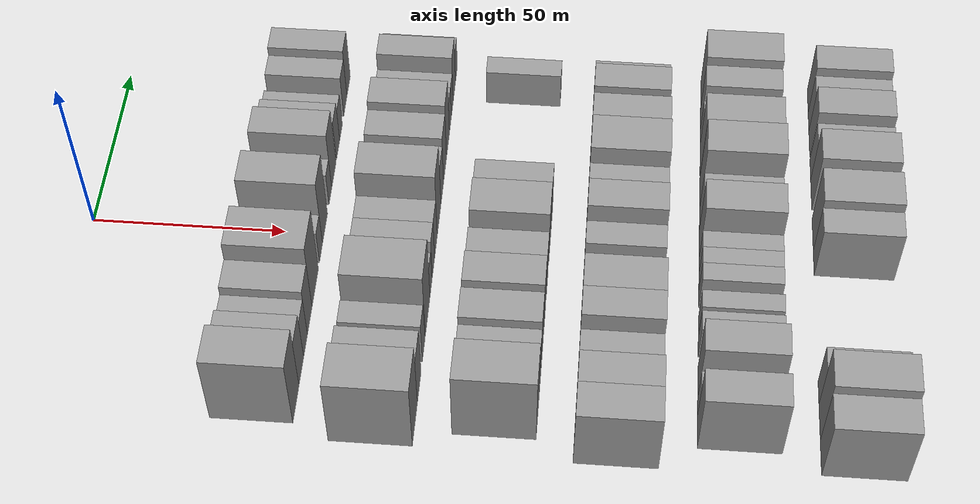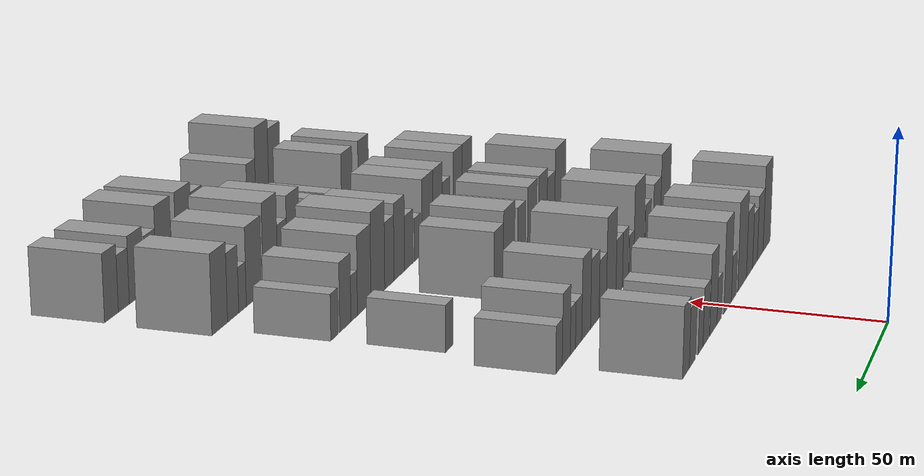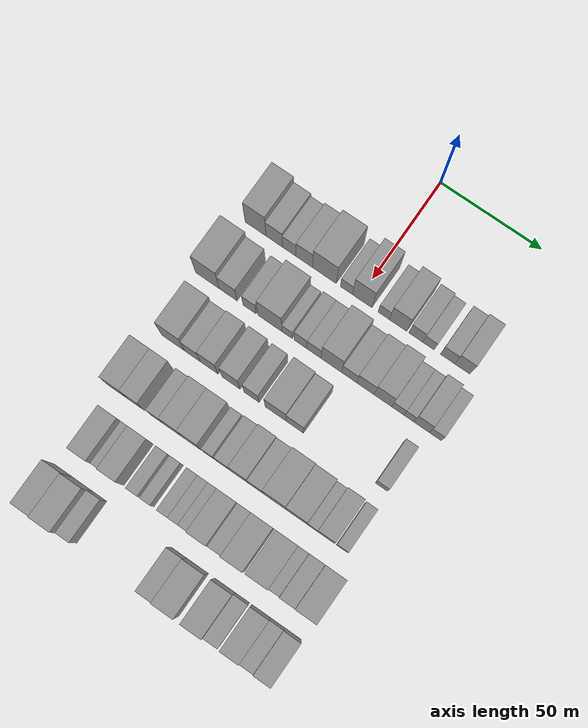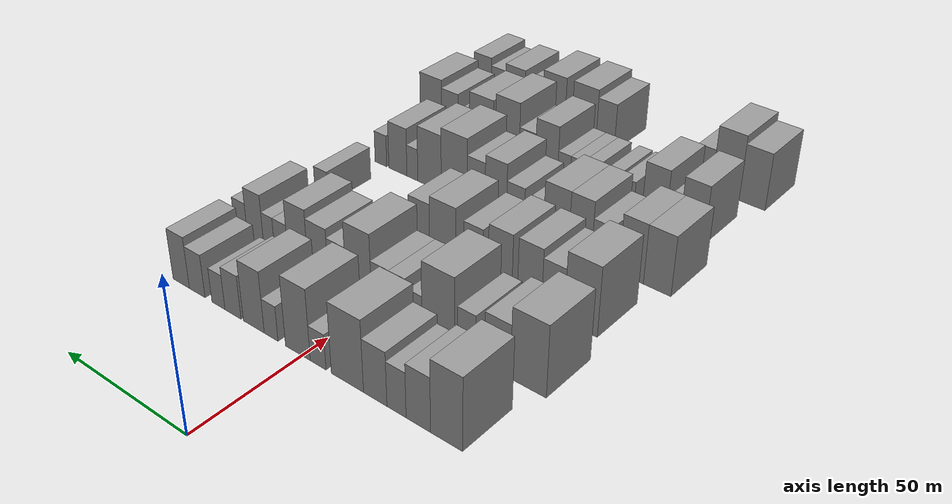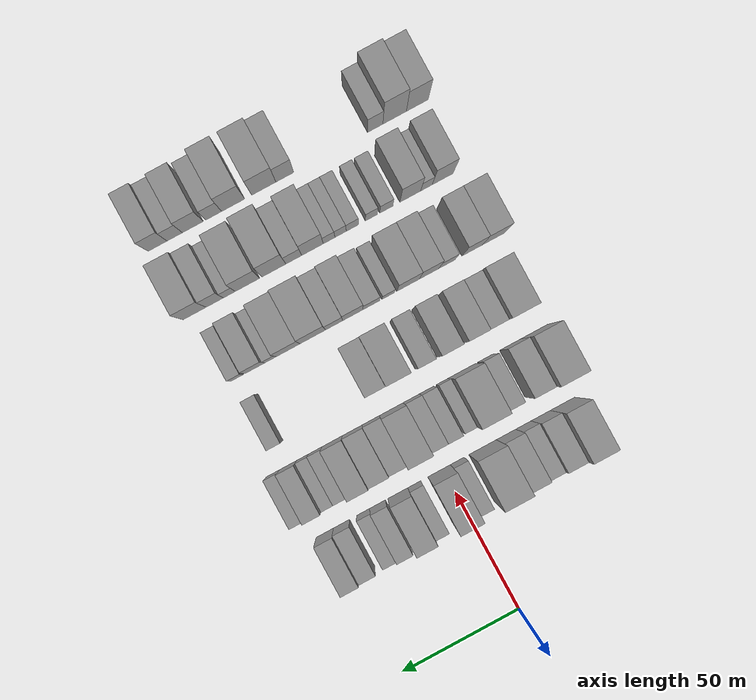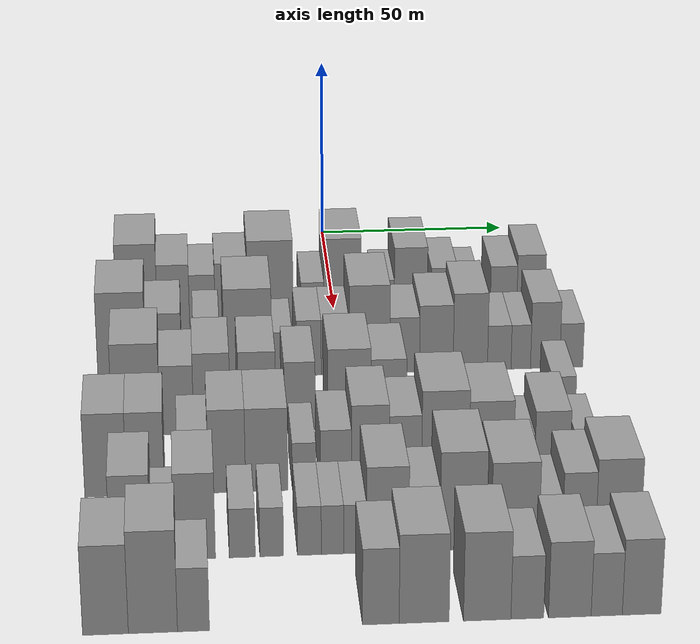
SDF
<sdf version="1.6">
 <world name="default">
  <model name="building_49">
   <static>1</static>
   <pose>50.0000 -51.3033 0 0.000000 0.000000 0.000000</pose>
   <link name="link">
    <pose>0 0 12.00 0 0 0</pose>
    <collision name="collision"><geometry><box><size>20.0000 10.4907 24.0000</size></box></geometry></collision>
    <visual name="visual">
     <cast_shadows>0</cast_shadows>
     <geometry><box><size>20.0000 10.4907 24.0000</size></box></geometry>
     <material>
      <script>
       <uri>model://grey_wall/materials/scripts</uri>
       <uri>model://grey_wall/materials/textures</uri>
       <name>vrc/grey_wall</name>
      </script>
     </material>
    </visual>
   </link>
  </model>
  <model name="building_50">
   <static>1</static>
   <pose>50.0000 -41.9349 0 0.000000 0.000000 0.000000</pose>
   <link name="link">
    <pose>0 0 9.00 0 0 0</pose>
    <collision name="collision"><geometry><box><size>20.0000 8.2460 18.0000</size></box></geometry></collision>
    <visual name="visual">
     <cast_shadows>0</cast_shadows>
     <geometry><box><size>20.0000 8.2460 18.0000</size></box></geometry>
     <material>
      <script>
       <uri>model://grey_wall/materials/scripts</uri>
       <uri>model://grey_wall/materials/textures</uri>
       <name>vrc/grey_wall</name>
      </script>
     </material>
    </visual>
   </link>
  </model>
  <model name="building_51">
   <static>1</static>
   <pose>50.0000 -34.5024 0 0.000000 0.000000 0.000000</pose>
   <link name="link">
    <pose>0 0 7.50 0 0 0</pose>
    <collision name="collision"><geometry><box><size>20.0000 6.6191 15.0000</size></box></geometry></collision>
    <visual name="visual">
     <cast_shadows>0</cast_shadows>
     <geometry><box><size>20.0000 6.6191 15.0000</size></box></geometry>
     <material>
      <script>
       <uri>model://grey_wall/materials/scripts</uri>
       <uri>model://grey_wall/materials/textures</uri>
       <name>vrc/grey_wall</name>
      </script>
     </material>
    </visual>
   </link>
  </model>
  <model name="building_52">
   <static>1</static>
   <pose>50.0000 -27.0388 0 0.000000 0.000000 0.000000</pose>
   <link name="link">
    <pose>0 0 9.00 0 0 0</pose>
    <collision name="collision"><geometry><box><size>20.0000 8.3081 18.0000</size></box></geometry></collision>
    <visual name="visual">
     <cast_shadows>0</cast_shadows>
     <geometry><box><size>20.0000 8.3081 18.0000</size></box></geometry>
     <material>
      <script>
       <uri>model://grey_wall/materials/scripts</uri>
       <uri>model://grey_wall/materials/textures</uri>
       <name>vrc/grey_wall</name>
      </script>
     </material>
    </visual>
   </link>
  </model>
  <model name="building_53">
   <static>1</static>
   <pose>50.0000 -16.9919 0 0.000000 0.000000 0.000000</pose>
   <link name="link">
    <pose>0 0 12.00 0 0 0</pose>
    <collision name="collision"><geometry><box><size>20.0000 11.7858 24.0000</size></box></geometry></collision>
    <visual name="visual">
     <cast_shadows>0</cast_shadows>
     <geometry><box><size>20.0000 11.7858 24.0000</size></box></geometry>
     <material>
      <script>
       <uri>model://grey_wall/materials/scripts</uri>
       <uri>model://grey_wall/materials/textures</uri>
       <name>vrc/grey_wall</name>
      </script>
     </material>
    </visual>
   </link>
  </model>
  <model name="building_54">
   <static>1</static>
   <pose>50.0000 -6.1153 0 0.000000 0.000000 0.000000</pose>
   <link name="link">
    <pose>0 0 6.00 0 0 0</pose>
    <collision name="collision"><geometry><box><size>20.0000 5.9674 12.0000</size></box></geometry></collision>
    <visual name="visual">
     <cast_shadows>0</cast_shadows>
     <geometry><box><size>20.0000 5.9674 12.0000</size></box></geometry>
     <material>
      <script>
       <uri>model://grey_wall/materials/scripts</uri>
       <uri>model://grey_wall/materials/textures</uri>
       <name>vrc/grey_wall</name>
      </script>
     </material>
    </visual>
   </link>
  </model>
  <model name="building_55">
   <static>1</static>
   <pose>50.0000 1.6876 0 0.000000 0.000000 0.000000</pose>
   <link name="link">
    <pose>0 0 12.00 0 0 0</pose>
    <collision name="collision"><geometry><box><size>20.0000 9.6382 24.0000</size></box></geometry></collision>
    <visual name="visual">
     <cast_shadows>0</cast_shadows>
     <geometry><box><size>20.0000 9.6382 24.0000</size></box></geometry>
     <material>
      <script>
       <uri>model://grey_wall/materials/scripts</uri>
       <uri>model://grey_wall/materials/textures</uri>
       <name>vrc/grey_wall</name>
      </script>
     </material>
    </visual>
   </link>
  </model>
  <model name="building_56">
   <static>1</static>
   <pose>50.0000 12.2809 0 0.000000 0.000000 0.000000</pose>
   <link name="link">
    <pose>0 0 6.00 0 0 0</pose>
    <collision name="collision"><geometry><box><size>20.0000 5.5483 12.0000</size></box></geometry></collision>
    <visual name="visual">
     <cast_shadows>0</cast_shadows>
     <geometry><box><size>20.0000 5.5483 12.0000</size></box></geometry>
     <material>
      <script>
       <uri>model://grey_wall/materials/scripts</uri>
       <uri>model://grey_wall/materials/textures</uri>
       <name>vrc/grey_wall</name>
      </script>
     </material>
    </visual>
   </link>
  </model>
  <model name="building_57">
   <static>1</static>
   <pose>50.0000 19.3455 0 0.000000 0.000000 0.000000</pose>
   <link name="link">
    <pose>0 0 10.50 0 0 0</pose>
    <collision name="collision"><geometry><box><size>20.0000 8.5810 21.0000</size></box></geometry></collision>
    <visual name="visual">
     <cast_shadows>0</cast_shadows>
     <geometry><box><size>20.0000 8.5810 21.0000</size></box></geometry>
     <material>
      <script>
       <uri>model://grey_wall/materials/scripts</uri>
       <uri>model://grey_wall/materials/textures</uri>
       <name>vrc/grey_wall</name>
      </script>
     </material>
    </visual>
   </link>
  </model>
  <model name="building_58">
   <static>1</static>
   <pose>50.0000 28.0210 0 0.000000 0.000000 0.000000</pose>
   <link name="link">
    <pose>0 0 7.50 0 0 0</pose>
    <collision name="collision"><geometry><box><size>20.0000 6.7700 15.0000</size></box></geometry></collision>
    <visual name="visual">
     <cast_shadows>0</cast_shadows>
     <geometry><box><size>20.0000 6.7700 15.0000</size></box></geometry>
     <material>
      <script>
       <uri>model://grey_wall/materials/scripts</uri>
       <uri>model://grey_wall/materials/textures</uri>
       <name>vrc/grey_wall</name>
      </script>
     </material>
    </visual>
   </link>
  </model>
  <model name="building_59">
   <static>1</static>
   <pose>50.0000 34.2155 0 0.000000 0.000000 0.000000</pose>
   <link name="link">
    <pose>0 0 6.00 0 0 0</pose>
    <collision name="collision"><geometry><box><size>20.0000 5.6189 12.0000</size></box></geometry></collision>
    <visual name="visual">
     <cast_shadows>0</cast_shadows>
     <geometry><box><size>20.0000 5.6189 12.0000</size></box></geometry>
     <material>
      <script>
       <uri>model://grey_wall/materials/scripts</uri>
       <uri>model://grey_wall/materials/textures</uri>
       <name>vrc/grey_wall</name>
      </script>
     </material>
    </visual>
   </link>
  </model>
  <model name="building_60">
   <static>1</static>
   <pose>50.0000 43.4858 0 0.000000 0.000000 0.000000</pose>
   <link name="link">
    <pose>0 0 7.50 0 0 0</pose>
    <collision name="collision"><geometry><box><size>20.0000 6.9217 15.0000</size></box></geometry></collision>
    <visual name="visual">
     <cast_shadows>0</cast_shadows>
     <geometry><box><size>20.0000 6.9217 15.0000</size></box></geometry>
     <material>
      <script>
       <uri>model://grey_wall/materials/scripts</uri>
       <uri>model://grey_wall/materials/textures</uri>
       <name>vrc/grey_wall</name>
      </script>
     </material>
    </visual>
   </link>
  </model>
  <model name="building_61">
   <static>1</static>
   <pose>50.0000 50.6278 0 0.000000 0.000000 0.000000</pose>
   <link name="link">
    <pose>0 0 9.00 0 0 0</pose>
    <collision name="collision"><geometry><box><size>20.0000 7.3623 18.0000</size></box></geometry></collision>
    <visual name="visual">
     <cast_shadows>0</cast_shadows>
     <geometry><box><size>20.0000 7.3623 18.0000</size></box></geometry>
     <material>
      <script>
       <uri>model://grey_wall/materials/scripts</uri>
       <uri>model://grey_wall/materials/textures</uri>
       <name>vrc/grey_wall</name>
      </script>
     </material>
    </visual>
   </link>
  </model>
  <model name="building_156">
   <static>1</static>
   <pose>79.0000 -54.8177 0 0.000000 0.000000 0.000000</pose>
   <link name="link">
    <pose>0 0 12.00 0 0 0</pose>
    <collision name="collision"><geometry><box><size>20.0000 11.8199 24.0000</size></box></geometry></collision>
    <visual name="visual">
     <cast_shadows>0</cast_shadows>
     <geometry><box><size>20.0000 11.8199 24.0000</size></box></geometry>
     <material>
      <script>
       <uri>model://grey_wall/materials/scripts</uri>
       <uri>model://grey_wall/materials/textures</uri>
       <name>vrc/grey_wall</name>
      </script>
     </material>
    </visual>
   </link>
  </model>
  <model name="building_157">
   <static>1</static>
   <pose>79.0000 -44.4747 0 0.000000 0.000000 0.000000</pose>
   <link name="link">
    <pose>0 0 9.00 0 0 0</pose>
    <collision name="collision"><geometry><box><size>20.0000 8.8660 18.0000</size></box></geometry></collision>
    <visual name="visual">
     <cast_shadows>0</cast_shadows>
     <geometry><box><size>20.0000 8.8660 18.0000</size></box></geometry>
     <material>
      <script>
       <uri>model://grey_wall/materials/scripts</uri>
       <uri>model://grey_wall/materials/textures</uri>
       <name>vrc/grey_wall</name>
      </script>
     </material>
    </visual>
   </link>
  </model>
  <model name="building_158">
   <static>1</static>
   <pose>79.0000 -33.8122 0 0.000000 0.000000 0.000000</pose>
   <link name="link">
    <pose>0 0 7.50 0 0 0</pose>
    <collision name="collision"><geometry><box><size>20.0000 6.4590 15.0000</size></box></geometry></collision>
    <visual name="visual">
     <cast_shadows>0</cast_shadows>
     <geometry><box><size>20.0000 6.4590 15.0000</size></box></geometry>
     <material>
      <script>
       <uri>model://grey_wall/materials/scripts</uri>
       <uri>model://grey_wall/materials/textures</uri>
       <name>vrc/grey_wall</name>
      </script>
     </material>
    </visual>
   </link>
  </model>
  <model name="building_159">
   <static>1</static>
   <pose>79.0000 -23.6908 0 0.000000 0.000000 0.000000</pose>
   <link name="link">
    <pose>0 0 12.00 0 0 0</pose>
    <collision name="collision"><geometry><box><size>20.0000 11.7838 24.0000</size></box></geometry></collision>
    <visual name="visual">
     <cast_shadows>0</cast_shadows>
     <geometry><box><size>20.0000 11.7838 24.0000</size></box></geometry>
     <material>
      <script>
       <uri>model://grey_wall/materials/scripts</uri>
       <uri>model://grey_wall/materials/textures</uri>
       <name>vrc/grey_wall</name>
      </script>
     </material>
    </visual>
   </link>
  </model>
  <model name="building_160">
   <static>1</static>
   <pose>79.0000 -15.2521 0 0.000000 0.000000 0.000000</pose>
   <link name="link">
    <pose>0 0 6.00 0 0 0</pose>
    <collision name="collision"><geometry><box><size>20.0000 5.0935 12.0000</size></box></geometry></collision>
    <visual name="visual">
     <cast_shadows>0</cast_shadows>
     <geometry><box><size>20.0000 5.0935 12.0000</size></box></geometry>
     <material>
      <script>
       <uri>model://grey_wall/materials/scripts</uri>
       <uri>model://grey_wall/materials/textures</uri>
       <name>vrc/grey_wall</name>
      </script>
     </material>
    </visual>
   </link>
  </model>
  <model name="building_161">
   <static>1</static>
   <pose>79.0000 -8.6338 0 0.000000 0.000000 0.000000</pose>
   <link name="link">
    <pose>0 0 7.50 0 0 0</pose>
    <collision name="collision"><geometry><box><size>20.0000 6.1432 15.0000</size></box></geometry></collision>
    <visual name="visual">
     <cast_shadows>0</cast_shadows>
     <geometry><box><size>20.0000 6.1432 15.0000</size></box></geometry>
     <material>
      <script>
       <uri>model://grey_wall/materials/scripts</uri>
       <uri>model://grey_wall/materials/textures</uri>
       <name>vrc/grey_wall</name>
      </script>
     </material>
    </visual>
   </link>
  </model>
  <model name="building_162">
   <static>1</static>
   <pose>79.0000 -2.0818 0 0.000000 0.000000 0.000000</pose>
   <link name="link">
    <pose>0 0 7.50 0 0 0</pose>
    <collision name="collision"><geometry><box><size>20.0000 6.9608 15.0000</size></box></geometry></collision>
    <visual name="visual">
     <cast_shadows>0</cast_shadows>
     <geometry><box><size>20.0000 6.9608 15.0000</size></box></geometry>
     <material>
      <script>
       <uri>model://grey_wall/materials/scripts</uri>
       <uri>model://grey_wall/materials/textures</uri>
       <name>vrc/grey_wall</name>
      </script>
     </material>
    </visual>
   </link>
  </model>
  <model name="building_163">
   <static>1</static>
   <pose>79.0000 6.4632 0 0.000000 0.000000 0.000000</pose>
   <link name="link">
    <pose>0 0 12.00 0 0 0</pose>
    <collision name="collision"><geometry><box><size>20.0000 10.1292 24.0000</size></box></geometry></collision>
    <visual name="visual">
     <cast_shadows>0</cast_shadows>
     <geometry><box><size>20.0000 10.1292 24.0000</size></box></geometry>
     <material>
      <script>
       <uri>model://grey_wall/materials/scripts</uri>
       <uri>model://grey_wall/materials/textures</uri>
       <name>vrc/grey_wall</name>
      </script>
     </material>
    </visual>
   </link>
  </model>
  <model name="building_164">
   <static>1</static>
   <pose>79.0000 15.2209 0 0.000000 0.000000 0.000000</pose>
   <link name="link">
    <pose>0 0 7.50 0 0 0</pose>
    <collision name="collision"><geometry><box><size>20.0000 7.3860 15.0000</size></box></geometry></collision>
    <visual name="visual">
     <cast_shadows>0</cast_shadows>
     <geometry><box><size>20.0000 7.3860 15.0000</size></box></geometry>
     <material>
      <script>
       <uri>model://grey_wall/materials/scripts</uri>
       <uri>model://grey_wall/materials/textures</uri>
       <name>vrc/grey_wall</name>
      </script>
     </material>
    </visual>
   </link>
  </model>
  <model name="building_165">
   <static>1</static>
   <pose>79.0000 23.1251 0 0.000000 0.000000 0.000000</pose>
   <link name="link">
    <pose>0 0 9.00 0 0 0</pose>
    <collision name="collision"><geometry><box><size>20.0000 8.4223 18.0000</size></box></geometry></collision>
    <visual name="visual">
     <cast_shadows>0</cast_shadows>
     <geometry><box><size>20.0000 8.4223 18.0000</size></box></geometry>
     <material>
      <script>
       <uri>model://grey_wall/materials/scripts</uri>
       <uri>model://grey_wall/materials/textures</uri>
       <name>vrc/grey_wall</name>
      </script>
     </material>
    </visual>
   </link>
  </model>
  <model name="building_166">
   <static>1</static>
   <pose>79.0000 31.6337 0 0.000000 0.000000 0.000000</pose>
   <link name="link">
    <pose>0 0 10.50 0 0 0</pose>
    <collision name="collision"><geometry><box><size>20.0000 8.5950 21.0000</size></box></geometry></collision>
    <visual name="visual">
     <cast_shadows>0</cast_shadows>
     <geometry><box><size>20.0000 8.5950 21.0000</size></box></geometry>
     <material>
      <script>
       <uri>model://grey_wall/materials/scripts</uri>
       <uri>model://grey_wall/materials/textures</uri>
       <name>vrc/grey_wall</name>
      </script>
     </material>
    </visual>
   </link>
  </model>
  <model name="building_167">
   <static>1</static>
   <pose>79.0000 38.8877 0 0.000000 0.000000 0.000000</pose>
   <link name="link">
    <pose>0 0 6.00 0 0 0</pose>
    <collision name="collision"><geometry><box><size>20.0000 5.9130 12.0000</size></box></geometry></collision>
    <visual name="visual">
     <cast_shadows>0</cast_shadows>
     <geometry><box><size>20.0000 5.9130 12.0000</size></box></geometry>
     <material>
      <script>
       <uri>model://grey_wall/materials/scripts</uri>
       <uri>model://grey_wall/materials/textures</uri>
       <name>vrc/grey_wall</name>
      </script>
     </material>
    </visual>
   </link>
  </model>
  <model name="building_168">
   <static>1</static>
   <pose>79.0000 44.2893 0 0.000000 0.000000 0.000000</pose>
   <link name="link">
    <pose>0 0 6.00 0 0 0</pose>
    <collision name="collision"><geometry><box><size>20.0000 4.8902 12.0000</size></box></geometry></collision>
    <visual name="visual">
     <cast_shadows>0</cast_shadows>
     <geometry><box><size>20.0000 4.8902 12.0000</size></box></geometry>
     <material>
      <script>
       <uri>model://grey_wall/materials/scripts</uri>
       <uri>model://grey_wall/materials/textures</uri>
       <name>vrc/grey_wall</name>
      </script>
     </material>
    </visual>
   </link>
  </model>
  <model name="building_169">
   <static>1</static>
   <pose>79.0000 50.4029 0 0.000000 0.000000 0.000000</pose>
   <link name="link">
    <pose>0 0 9.00 0 0 0</pose>
    <collision name="collision"><geometry><box><size>20.0000 7.3370 18.0000</size></box></geometry></collision>
    <visual name="visual">
     <cast_shadows>0</cast_shadows>
     <geometry><box><size>20.0000 7.3370 18.0000</size></box></geometry>
     <material>
      <script>
       <uri>model://grey_wall/materials/scripts</uri>
       <uri>model://grey_wall/materials/textures</uri>
       <name>vrc/grey_wall</name>
      </script>
     </material>
    </visual>
   </link>
  </model>
  <model name="building_170">
   <static>1</static>
   <pose>79.0000 56.9866 0 0.000000 0.000000 0.000000</pose>
   <link name="link">
    <pose>0 0 6.00 0 0 0</pose>
    <collision name="collision"><geometry><box><size>20.0000 5.8304 12.0000</size></box></geometry></collision>
    <visual name="visual">
     <cast_shadows>0</cast_shadows>
     <geometry><box><size>20.0000 5.8304 12.0000</size></box></geometry>
     <material>
      <script>
       <uri>model://grey_wall/materials/scripts</uri>
       <uri>model://grey_wall/materials/textures</uri>
       <name>vrc/grey_wall</name>
      </script>
     </material>
    </visual>
   </link>
  </model>
  <model name="building_271">
   <static>1</static>
   <pose>108.0000 -51.1246 0 0.000000 0.000000 0.000000</pose>
   <link name="link">
    <pose>0 0 12.00 0 0 0</pose>
    <collision name="collision"><geometry><box><size>20.0000 11.2977 24.0000</size></box></geometry></collision>
    <visual name="visual">
     <cast_shadows>0</cast_shadows>
     <geometry><box><size>20.0000 11.2977 24.0000</size></box></geometry>
     <material>
      <script>
       <uri>model://grey_wall/materials/scripts</uri>
       <uri>model://grey_wall/materials/textures</uri>
       <name>vrc/grey_wall</name>
      </script>
     </material>
    </visual>
   </link>
  </model>
  <model name="building_272">
   <static>1</static>
   <pose>108.0000 -41.4948 0 0.000000 0.000000 0.000000</pose>
   <link name="link">
    <pose>0 0 9.00 0 0 0</pose>
    <collision name="collision"><geometry><box><size>20.0000 7.9620 18.0000</size></box></geometry></collision>
    <visual name="visual">
     <cast_shadows>0</cast_shadows>
     <geometry><box><size>20.0000 7.9620 18.0000</size></box></geometry>
     <material>
      <script>
       <uri>model://grey_wall/materials/scripts</uri>
       <uri>model://grey_wall/materials/textures</uri>
       <name>vrc/grey_wall</name>
      </script>
     </material>
    </visual>
   </link>
  </model>
  <model name="building_273">
   <static>1</static>
   <pose>108.0000 -33.1777 0 0.000000 0.000000 0.000000</pose>
   <link name="link">
    <pose>0 0 10.50 0 0 0</pose>
    <collision name="collision"><geometry><box><size>20.0000 8.6722 21.0000</size></box></geometry></collision>
    <visual name="visual">
     <cast_shadows>0</cast_shadows>
     <geometry><box><size>20.0000 8.6722 21.0000</size></box></geometry>
     <material>
      <script>
       <uri>model://grey_wall/materials/scripts</uri>
       <uri>model://grey_wall/materials/textures</uri>
       <name>vrc/grey_wall</name>
      </script>
     </material>
    </visual>
   </link>
  </model>
  <model name="building_274">
   <static>1</static>
   <pose>108.0000 -22.4311 0 0.000000 0.000000 0.000000</pose>
   <link name="link">
    <pose>0 0 10.50 0 0 0</pose>
    <collision name="collision"><geometry><box><size>20.0000 8.8210 21.0000</size></box></geometry></collision>
    <visual name="visual">
     <cast_shadows>0</cast_shadows>
     <geometry><box><size>20.0000 8.8210 21.0000</size></box></geometry>
     <material>
      <script>
       <uri>model://grey_wall/materials/scripts</uri>
       <uri>model://grey_wall/materials/textures</uri>
       <name>vrc/grey_wall</name>
      </script>
     </material>
    </visual>
   </link>
  </model>
  <model name="building_275">
   <static>1</static>
   <pose>108.0000 -12.3391 0 0.000000 0.000000 0.000000</pose>
   <link name="link">
    <pose>0 0 9.00 0 0 0</pose>
    <collision name="collision"><geometry><box><size>20.0000 7.3630 18.0000</size></box></geometry></collision>
    <visual name="visual">
     <cast_shadows>0</cast_shadows>
     <geometry><box><size>20.0000 7.3630 18.0000</size></box></geometry>
     <material>
      <script>
       <uri>model://grey_wall/materials/scripts</uri>
       <uri>model://grey_wall/materials/textures</uri>
       <name>vrc/grey_wall</name>
      </script>
     </material>
    </visual>
   </link>
  </model>
  <model name="building_276">
   <static>1</static>
   <pose>108.0000 -0.5248 0 0.000000 0.000000 0.000000</pose>
   <link name="link">
    <pose>0 0 10.50 0 0 0</pose>
    <collision name="collision"><geometry><box><size>20.0000 10.2655 21.0000</size></box></geometry></collision>
    <visual name="visual">
     <cast_shadows>0</cast_shadows>
     <geometry><box><size>20.0000 10.2655 21.0000</size></box></geometry>
     <material>
      <script>
       <uri>model://grey_wall/materials/scripts</uri>
       <uri>model://grey_wall/materials/textures</uri>
       <name>vrc/grey_wall</name>
      </script>
     </material>
    </visual>
   </link>
  </model>
  <model name="building_277">
   <static>1</static>
   <pose>108.0000 8.8311 0 0.000000 0.000000 0.000000</pose>
   <link name="link">
    <pose>0 0 9.00 0 0 0</pose>
    <collision name="collision"><geometry><box><size>20.0000 8.4463 18.0000</size></box></geometry></collision>
    <visual name="visual">
     <cast_shadows>0</cast_shadows>
     <geometry><box><size>20.0000 8.4463 18.0000</size></box></geometry>
     <material>
      <script>
       <uri>model://grey_wall/materials/scripts</uri>
       <uri>model://grey_wall/materials/textures</uri>
       <name>vrc/grey_wall</name>
      </script>
     </material>
    </visual>
   </link>
  </model>
  <model name="building_278">
   <static>1</static>
   <pose>108.0000 50.7132 0 0.000000 0.000000 0.000000</pose>
   <link name="link">
    <pose>0 0 6.00 0 0 0</pose>
    <collision name="collision"><geometry><box><size>20.0000 5.7726 12.0000</size></box></geometry></collision>
    <visual name="visual">
     <cast_shadows>0</cast_shadows>
     <geometry><box><size>20.0000 5.7726 12.0000</size></box></geometry>
     <material>
      <script>
       <uri>model://grey_wall/materials/scripts</uri>
       <uri>model://grey_wall/materials/textures</uri>
       <name>vrc/grey_wall</name>
      </script>
     </material>
    </visual>
   </link>
  </model>
  <model name="building_383">
   <static>1</static>
   <pose>137.0000 -57.7905 0 0.000000 0.000000 0.000000</pose>
   <link name="link">
    <pose>0 0 10.50 0 0 0</pose>
    <collision name="collision"><geometry><box><size>20.0000 9.4330 21.0000</size></box></geometry></collision>
    <visual name="visual">
     <cast_shadows>0</cast_shadows>
     <geometry><box><size>20.0000 9.4330 21.0000</size></box></geometry>
     <material>
      <script>
       <uri>model://grey_wall/materials/scripts</uri>
       <uri>model://grey_wall/materials/textures</uri>
       <name>vrc/grey_wall</name>
      </script>
     </material>
    </visual>
   </link>
  </model>
  <model name="building_384">
   <static>1</static>
   <pose>137.0000 -48.7882 0 0.000000 0.000000 0.000000</pose>
   <link name="link">
    <pose>0 0 10.50 0 0 0</pose>
    <collision name="collision"><geometry><box><size>20.0000 8.5717 21.0000</size></box></geometry></collision>
    <visual name="visual">
     <cast_shadows>0</cast_shadows>
     <geometry><box><size>20.0000 8.5717 21.0000</size></box></geometry>
     <material>
      <script>
       <uri>model://grey_wall/materials/scripts</uri>
       <uri>model://grey_wall/materials/textures</uri>
       <name>vrc/grey_wall</name>
      </script>
     </material>
    </visual>
   </link>
  </model>
  <model name="building_385">
   <static>1</static>
   <pose>137.0000 -38.0404 0 0.000000 0.000000 0.000000</pose>
   <link name="link">
    <pose>0 0 7.50 0 0 0</pose>
    <collision name="collision"><geometry><box><size>20.0000 6.9239 15.0000</size></box></geometry></collision>
    <visual name="visual">
     <cast_shadows>0</cast_shadows>
     <geometry><box><size>20.0000 6.9239 15.0000</size></box></geometry>
     <material>
      <script>
       <uri>model://grey_wall/materials/scripts</uri>
       <uri>model://grey_wall/materials/textures</uri>
       <name>vrc/grey_wall</name>
      </script>
     </material>
    </visual>
   </link>
  </model>
  <model name="building_386">
   <static>1</static>
   <pose>137.0000 -30.3674 0 0.000000 0.000000 0.000000</pose>
   <link name="link">
    <pose>0 0 10.50 0 0 0</pose>
    <collision name="collision"><geometry><box><size>20.0000 8.4222 21.0000</size></box></geometry></collision>
    <visual name="visual">
     <cast_shadows>0</cast_shadows>
     <geometry><box><size>20.0000 8.4222 21.0000</size></box></geometry>
     <material>
      <script>
       <uri>model://grey_wall/materials/scripts</uri>
       <uri>model://grey_wall/materials/textures</uri>
       <name>vrc/grey_wall</name>
      </script>
     </material>
    </visual>
   </link>
  </model>
  <model name="building_387">
   <static>1</static>
   <pose>137.0000 -21.3410 0 0.000000 0.000000 0.000000</pose>
   <link name="link">
    <pose>0 0 10.50 0 0 0</pose>
    <collision name="collision"><geometry><box><size>20.0000 9.6305 21.0000</size></box></geometry></collision>
    <visual name="visual">
     <cast_shadows>0</cast_shadows>
     <geometry><box><size>20.0000 9.6305 21.0000</size></box></geometry>
     <material>
      <script>
       <uri>model://grey_wall/materials/scripts</uri>
       <uri>model://grey_wall/materials/textures</uri>
       <name>vrc/grey_wall</name>
      </script>
     </material>
    </visual>
   </link>
  </model>
  <model name="building_388">
   <static>1</static>
   <pose>137.0000 -12.8335 0 0.000000 0.000000 0.000000</pose>
   <link name="link">
    <pose>0 0 6.00 0 0 0</pose>
    <collision name="collision"><geometry><box><size>20.0000 5.3845 12.0000</size></box></geometry></collision>
    <visual name="visual">
     <cast_shadows>0</cast_shadows>
     <geometry><box><size>20.0000 5.3845 12.0000</size></box></geometry>
     <material>
      <script>
       <uri>model://grey_wall/materials/scripts</uri>
       <uri>model://grey_wall/materials/textures</uri>
       <name>vrc/grey_wall</name>
      </script>
     </material>
    </visual>
   </link>
  </model>
  <model name="building_389">
   <static>1</static>
   <pose>137.0000 -5.6070 0 0.000000 0.000000 0.000000</pose>
   <link name="link">
    <pose>0 0 7.50 0 0 0</pose>
    <collision name="collision"><geometry><box><size>20.0000 7.0685 15.0000</size></box></geometry></collision>
    <visual name="visual">
     <cast_shadows>0</cast_shadows>
     <geometry><box><size>20.0000 7.0685 15.0000</size></box></geometry>
     <material>
      <script>
       <uri>model://grey_wall/materials/scripts</uri>
       <uri>model://grey_wall/materials/textures</uri>
       <name>vrc/grey_wall</name>
      </script>
     </material>
    </visual>
   </link>
  </model>
  <model name="building_390">
   <static>1</static>
   <pose>137.0000 2.2405 0 0.000000 0.000000 0.000000</pose>
   <link name="link">
    <pose>0 0 10.50 0 0 0</pose>
    <collision name="collision"><geometry><box><size>20.0000 8.6264 21.0000</size></box></geometry></collision>
    <visual name="visual">
     <cast_shadows>0</cast_shadows>
     <geometry><box><size>20.0000 8.6264 21.0000</size></box></geometry>
     <material>
      <script>
       <uri>model://grey_wall/materials/scripts</uri>
       <uri>model://grey_wall/materials/textures</uri>
       <name>vrc/grey_wall</name>
      </script>
     </material>
    </visual>
   </link>
  </model>
  <model name="building_391">
   <static>1</static>
   <pose>137.0000 10.2466 0 0.000000 0.000000 0.000000</pose>
   <link name="link">
    <pose>0 0 9.00 0 0 0</pose>
    <collision name="collision"><geometry><box><size>20.0000 7.3857 18.0000</size></box></geometry></collision>
    <visual name="visual">
     <cast_shadows>0</cast_shadows>
     <geometry><box><size>20.0000 7.3857 18.0000</size></box></geometry>
     <material>
      <script>
       <uri>model://grey_wall/materials/scripts</uri>
       <uri>model://grey_wall/materials/textures</uri>
       <name>vrc/grey_wall</name>
      </script>
     </material>
    </visual>
   </link>
  </model>
  <model name="building_392">
   <static>1</static>
   <pose>137.0000 19.3684 0 0.000000 0.000000 0.000000</pose>
   <link name="link">
    <pose>0 0 12.00 0 0 0</pose>
    <collision name="collision"><geometry><box><size>20.0000 10.8581 24.0000</size></box></geometry></collision>
    <visual name="visual">
     <cast_shadows>0</cast_shadows>
     <geometry><box><size>20.0000 10.8581 24.0000</size></box></geometry>
     <material>
      <script>
       <uri>model://grey_wall/materials/scripts</uri>
       <uri>model://grey_wall/materials/textures</uri>
       <name>vrc/grey_wall</name>
      </script>
     </material>
    </visual>
   </link>
  </model>
  <model name="building_393">
   <static>1</static>
   <pose>137.0000 29.8893 0 0.000000 0.000000 0.000000</pose>
   <link name="link">
    <pose>0 0 10.50 0 0 0</pose>
    <collision name="collision"><geometry><box><size>20.0000 10.1836 21.0000</size></box></geometry></collision>
    <visual name="visual">
     <cast_shadows>0</cast_shadows>
     <geometry><box><size>20.0000 10.1836 21.0000</size></box></geometry>
     <material>
      <script>
       <uri>model://grey_wall/materials/scripts</uri>
       <uri>model://grey_wall/materials/textures</uri>
       <name>vrc/grey_wall</name>
      </script>
     </material>
    </visual>
   </link>
  </model>
  <model name="building_394">
   <static>1</static>
   <pose>137.0000 37.4049 0 0.000000 0.000000 0.000000</pose>
   <link name="link">
    <pose>0 0 6.00 0 0 0</pose>
    <collision name="collision"><geometry><box><size>20.0000 4.8477 12.0000</size></box></geometry></collision>
    <visual name="visual">
     <cast_shadows>0</cast_shadows>
     <geometry><box><size>20.0000 4.8477 12.0000</size></box></geometry>
     <material>
      <script>
       <uri>model://grey_wall/materials/scripts</uri>
       <uri>model://grey_wall/materials/textures</uri>
       <name>vrc/grey_wall</name>
      </script>
     </material>
    </visual>
   </link>
  </model>
  <model name="building_395">
   <static>1</static>
   <pose>137.0000 43.8890 0 0.000000 0.000000 0.000000</pose>
   <link name="link">
    <pose>0 0 9.00 0 0 0</pose>
    <collision name="collision"><geometry><box><size>20.0000 8.1205 18.0000</size></box></geometry></collision>
    <visual name="visual">
     <cast_shadows>0</cast_shadows>
     <geometry><box><size>20.0000 8.1205 18.0000</size></box></geometry>
     <material>
      <script>
       <uri>model://grey_wall/materials/scripts</uri>
       <uri>model://grey_wall/materials/textures</uri>
       <name>vrc/grey_wall</name>
      </script>
     </material>
    </visual>
   </link>
  </model>
  <model name="building_396">
   <static>1</static>
   <pose>137.0000 51.6131 0 0.000000 0.000000 0.000000</pose>
   <link name="link">
    <pose>0 0 6.00 0 0 0</pose>
    <collision name="collision"><geometry><box><size>20.0000 5.3279 12.0000</size></box></geometry></collision>
    <visual name="visual">
     <cast_shadows>0</cast_shadows>
     <geometry><box><size>20.0000 5.3279 12.0000</size></box></geometry>
     <material>
      <script>
       <uri>model://grey_wall/materials/scripts</uri>
       <uri>model://grey_wall/materials/textures</uri>
       <name>vrc/grey_wall</name>
      </script>
     </material>
    </visual>
   </link>
  </model>
  <model name="building_497">
   <static>1</static>
   <pose>166.0000 -51.9217 0 0.000000 0.000000 0.000000</pose>
   <link name="link">
    <pose>0 0 10.50 0 0 0</pose>
    <collision name="collision"><geometry><box><size>20.0000 8.8877 21.0000</size></box></geometry></collision>
    <visual name="visual">
     <cast_shadows>0</cast_shadows>
     <geometry><box><size>20.0000 8.8877 21.0000</size></box></geometry>
     <material>
      <script>
       <uri>model://grey_wall/materials/scripts</uri>
       <uri>model://grey_wall/materials/textures</uri>
       <name>vrc/grey_wall</name>
      </script>
     </material>
    </visual>
   </link>
  </model>
  <model name="building_498">
   <static>1</static>
   <pose>166.0000 -44.9785 0 0.000000 0.000000 0.000000</pose>
   <link name="link">
    <pose>0 0 6.00 0 0 0</pose>
    <collision name="collision"><geometry><box><size>20.0000 4.9987 12.0000</size></box></geometry></collision>
    <visual name="visual">
     <cast_shadows>0</cast_shadows>
     <geometry><box><size>20.0000 4.9987 12.0000</size></box></geometry>
     <material>
      <script>
       <uri>model://grey_wall/materials/scripts</uri>
       <uri>model://grey_wall/materials/textures</uri>
       <name>vrc/grey_wall</name>
      </script>
     </material>
    </visual>
   </link>
  </model>
  <model name="building_499">
   <static>1</static>
   <pose>166.0000 -38.0386 0 0.000000 0.000000 0.000000</pose>
   <link name="link">
    <pose>0 0 10.50 0 0 0</pose>
    <collision name="collision"><geometry><box><size>20.0000 8.8812 21.0000</size></box></geometry></collision>
    <visual name="visual">
     <cast_shadows>0</cast_shadows>
     <geometry><box><size>20.0000 8.8812 21.0000</size></box></geometry>
     <material>
      <script>
       <uri>model://grey_wall/materials/scripts</uri>
       <uri>model://grey_wall/materials/textures</uri>
       <name>vrc/grey_wall</name>
      </script>
     </material>
    </visual>
   </link>
  </model>
  <model name="building_500">
   <static>1</static>
   <pose>166.0000 -27.7884 0 0.000000 0.000000 0.000000</pose>
   <link name="link">
    <pose>0 0 6.00 0 0 0</pose>
    <collision name="collision"><geometry><box><size>20.0000 5.6192 12.0000</size></box></geometry></collision>
    <visual name="visual">
     <cast_shadows>0</cast_shadows>
     <geometry><box><size>20.0000 5.6192 12.0000</size></box></geometry>
     <material>
      <script>
       <uri>model://grey_wall/materials/scripts</uri>
       <uri>model://grey_wall/materials/textures</uri>
       <name>vrc/grey_wall</name>
      </script>
     </material>
    </visual>
   </link>
  </model>
  <model name="building_501">
   <static>1</static>
   <pose>166.0000 -21.4084 0 0.000000 0.000000 0.000000</pose>
   <link name="link">
    <pose>0 0 6.00 0 0 0</pose>
    <collision name="collision"><geometry><box><size>20.0000 5.1408 12.0000</size></box></geometry></collision>
    <visual name="visual">
     <cast_shadows>0</cast_shadows>
     <geometry><box><size>20.0000 5.1408 12.0000</size></box></geometry>
     <material>
      <script>
       <uri>model://grey_wall/materials/scripts</uri>
       <uri>model://grey_wall/materials/textures</uri>
       <name>vrc/grey_wall</name>
      </script>
     </material>
    </visual>
   </link>
  </model>
  <model name="building_502">
   <static>1</static>
   <pose>166.0000 -13.2376 0 0.000000 0.000000 0.000000</pose>
   <link name="link">
    <pose>0 0 6.00 0 0 0</pose>
    <collision name="collision"><geometry><box><size>20.0000 5.2008 12.0000</size></box></geometry></collision>
    <visual name="visual">
     <cast_shadows>0</cast_shadows>
     <geometry><box><size>20.0000 5.2008 12.0000</size></box></geometry>
     <material>
      <script>
       <uri>model://grey_wall/materials/scripts</uri>
       <uri>model://grey_wall/materials/textures</uri>
       <name>vrc/grey_wall</name>
      </script>
     </material>
    </visual>
   </link>
  </model>
  <model name="building_503">
   <static>1</static>
   <pose>166.0000 -8.2053 0 0.000000 0.000000 0.000000</pose>
   <link name="link">
    <pose>0 0 6.00 0 0 0</pose>
    <collision name="collision"><geometry><box><size>20.0000 4.8637 12.0000</size></box></geometry></collision>
    <visual name="visual">
     <cast_shadows>0</cast_shadows>
     <geometry><box><size>20.0000 4.8637 12.0000</size></box></geometry>
     <material>
      <script>
       <uri>model://grey_wall/materials/scripts</uri>
       <uri>model://grey_wall/materials/textures</uri>
       <name>vrc/grey_wall</name>
      </script>
     </material>
    </visual>
   </link>
  </model>
  <model name="building_504">
   <static>1</static>
   <pose>166.0000 -3.2700 0 0.000000 0.000000 0.000000</pose>
   <link name="link">
    <pose>0 0 6.00 0 0 0</pose>
    <collision name="collision"><geometry><box><size>20.0000 5.0069 12.0000</size></box></geometry></collision>
    <visual name="visual">
     <cast_shadows>0</cast_shadows>
     <geometry><box><size>20.0000 5.0069 12.0000</size></box></geometry>
     <material>
      <script>
       <uri>model://grey_wall/materials/scripts</uri>
       <uri>model://grey_wall/materials/textures</uri>
       <name>vrc/grey_wall</name>
      </script>
     </material>
    </visual>
   </link>
  </model>
  <model name="building_505">
   <static>1</static>
   <pose>166.0000 3.8300 0 0.000000 0.000000 0.000000</pose>
   <link name="link">
    <pose>0 0 10.50 0 0 0</pose>
    <collision name="collision"><geometry><box><size>20.0000 9.1930 21.0000</size></box></geometry></collision>
    <visual name="visual">
     <cast_shadows>0</cast_shadows>
     <geometry><box><size>20.0000 9.1930 21.0000</size></box></geometry>
     <material>
      <script>
       <uri>model://grey_wall/materials/scripts</uri>
       <uri>model://grey_wall/materials/textures</uri>
       <name>vrc/grey_wall</name>
      </script>
     </material>
    </visual>
   </link>
  </model>
  <model name="building_506">
   <static>1</static>
   <pose>166.0000 11.8275 0 0.000000 0.000000 0.000000</pose>
   <link name="link">
    <pose>0 0 7.50 0 0 0</pose>
    <collision name="collision"><geometry><box><size>20.0000 6.8021 15.0000</size></box></geometry></collision>
    <visual name="visual">
     <cast_shadows>0</cast_shadows>
     <geometry><box><size>20.0000 6.8021 15.0000</size></box></geometry>
     <material>
      <script>
       <uri>model://grey_wall/materials/scripts</uri>
       <uri>model://grey_wall/materials/textures</uri>
       <name>vrc/grey_wall</name>
      </script>
     </material>
    </visual>
   </link>
  </model>
  <model name="building_507">
   <static>1</static>
   <pose>166.0000 20.3329 0 0.000000 0.000000 0.000000</pose>
   <link name="link">
    <pose>0 0 12.00 0 0 0</pose>
    <collision name="collision"><geometry><box><size>20.0000 10.2089 24.0000</size></box></geometry></collision>
    <visual name="visual">
     <cast_shadows>0</cast_shadows>
     <geometry><box><size>20.0000 10.2089 24.0000</size></box></geometry>
     <material>
      <script>
       <uri>model://grey_wall/materials/scripts</uri>
       <uri>model://grey_wall/materials/textures</uri>
       <name>vrc/grey_wall</name>
      </script>
     </material>
    </visual>
   </link>
  </model>
  <model name="building_508">
   <static>1</static>
   <pose>166.0000 31.6842 0 0.000000 0.000000 0.000000</pose>
   <link name="link">
    <pose>0 0 10.50 0 0 0</pose>
    <collision name="collision"><geometry><box><size>20.0000 10.4938 21.0000</size></box></geometry></collision>
    <visual name="visual">
     <cast_shadows>0</cast_shadows>
     <geometry><box><size>20.0000 10.4938 21.0000</size></box></geometry>
     <material>
      <script>
       <uri>model://grey_wall/materials/scripts</uri>
       <uri>model://grey_wall/materials/textures</uri>
       <name>vrc/grey_wall</name>
      </script>
     </material>
    </visual>
   </link>
  </model>
  <model name="building_509">
   <static>1</static>
   <pose>166.0000 39.4787 0 0.000000 0.000000 0.000000</pose>
   <link name="link">
    <pose>0 0 6.00 0 0 0</pose>
    <collision name="collision"><geometry><box><size>20.0000 5.0951 12.0000</size></box></geometry></collision>
    <visual name="visual">
     <cast_shadows>0</cast_shadows>
     <geometry><box><size>20.0000 5.0951 12.0000</size></box></geometry>
     <material>
      <script>
       <uri>model://grey_wall/materials/scripts</uri>
       <uri>model://grey_wall/materials/textures</uri>
       <name>vrc/grey_wall</name>
      </script>
     </material>
    </visual>
   </link>
  </model>
  <model name="building_510">
   <static>1</static>
   <pose>166.0000 45.7065 0 0.000000 0.000000 0.000000</pose>
   <link name="link">
    <pose>0 0 9.00 0 0 0</pose>
    <collision name="collision"><geometry><box><size>20.0000 7.3606 18.0000</size></box></geometry></collision>
    <visual name="visual">
     <cast_shadows>0</cast_shadows>
     <geometry><box><size>20.0000 7.3606 18.0000</size></box></geometry>
     <material>
      <script>
       <uri>model://grey_wall/materials/scripts</uri>
       <uri>model://grey_wall/materials/textures</uri>
       <name>vrc/grey_wall</name>
      </script>
     </material>
    </visual>
   </link>
  </model>
  <model name="building_511">
   <static>1</static>
   <pose>166.0000 54.3565 0 0.000000 0.000000 0.000000</pose>
   <link name="link">
    <pose>0 0 10.50 0 0 0</pose>
    <collision name="collision"><geometry><box><size>20.0000 9.9395 21.0000</size></box></geometry></collision>
    <visual name="visual">
     <cast_shadows>0</cast_shadows>
     <geometry><box><size>20.0000 9.9395 21.0000</size></box></geometry>
     <material>
      <script>
       <uri>model://grey_wall/materials/scripts</uri>
       <uri>model://grey_wall/materials/textures</uri>
       <name>vrc/grey_wall</name>
      </script>
     </material>
    </visual>
   </link>
  </model>
  <model name="building_613">
   <static>1</static>
   <pose>195.0000 -56.8030 0 0.000000 0.000000 0.000000</pose>
   <link name="link">
    <pose>0 0 10.50 0 0 0</pose>
    <collision name="collision"><geometry><box><size>20.0000 9.3740 21.0000</size></box></geometry></collision>
    <visual name="visual">
     <cast_shadows>0</cast_shadows>
     <geometry><box><size>20.0000 9.3740 21.0000</size></box></geometry>
     <material>
      <script>
       <uri>model://grey_wall/materials/scripts</uri>
       <uri>model://grey_wall/materials/textures</uri>
       <name>vrc/grey_wall</name>
      </script>
     </material>
    </visual>
   </link>
  </model>
  <model name="building_614">
   <static>1</static>
   <pose>195.0000 -47.0674 0 0.000000 0.000000 0.000000</pose>
   <link name="link">
    <pose>0 0 12.00 0 0 0</pose>
    <collision name="collision"><geometry><box><size>20.0000 10.0973 24.0000</size></box></geometry></collision>
    <visual name="visual">
     <cast_shadows>0</cast_shadows>
     <geometry><box><size>20.0000 10.0973 24.0000</size></box></geometry>
     <material>
      <script>
       <uri>model://grey_wall/materials/scripts</uri>
       <uri>model://grey_wall/materials/textures</uri>
       <name>vrc/grey_wall</name>
      </script>
     </material>
    </visual>
   </link>
  </model>
  <model name="building_615">
   <static>1</static>
   <pose>195.0000 -38.7299 0 0.000000 0.000000 0.000000</pose>
   <link name="link">
    <pose>0 0 7.50 0 0 0</pose>
    <collision name="collision"><geometry><box><size>20.0000 6.5777 15.0000</size></box></geometry></collision>
    <visual name="visual">
     <cast_shadows>0</cast_shadows>
     <geometry><box><size>20.0000 6.5777 15.0000</size></box></geometry>
     <material>
      <script>
       <uri>model://grey_wall/materials/scripts</uri>
       <uri>model://grey_wall/materials/textures</uri>
       <name>vrc/grey_wall</name>
      </script>
     </material>
    </visual>
   </link>
  </model>
  <model name="building_616">
   <static>1</static>
   <pose>195.0000 0.0006 0 0.000000 0.000000 0.000000</pose>
   <link name="link">
    <pose>0 0 9.00 0 0 0</pose>
    <collision name="collision"><geometry><box><size>20.0000 7.6277 18.0000</size></box></geometry></collision>
    <visual name="visual">
     <cast_shadows>0</cast_shadows>
     <geometry><box><size>20.0000 7.6277 18.0000</size></box></geometry>
     <material>
      <script>
       <uri>model://grey_wall/materials/scripts</uri>
       <uri>model://grey_wall/materials/textures</uri>
       <name>vrc/grey_wall</name>
      </script>
     </material>
    </visual>
   </link>
  </model>
  <model name="building_617">
   <static>1</static>
   <pose>195.0000 9.0100 0 0.000000 0.000000 0.000000</pose>
   <link name="link">
    <pose>0 0 10.50 0 0 0</pose>
    <collision name="collision"><geometry><box><size>20.0000 10.3913 21.0000</size></box></geometry></collision>
    <visual name="visual">
     <cast_shadows>0</cast_shadows>
     <geometry><box><size>20.0000 10.3913 21.0000</size></box></geometry>
     <material>
      <script>
       <uri>model://grey_wall/materials/scripts</uri>
       <uri>model://grey_wall/materials/textures</uri>
       <name>vrc/grey_wall</name>
      </script>
     </material>
    </visual>
   </link>
  </model>
  <model name="building_618">
   <static>1</static>
   <pose>195.0000 22.1558 0 0.000000 0.000000 0.000000</pose>
   <link name="link">
    <pose>0 0 10.50 0 0 0</pose>
    <collision name="collision"><geometry><box><size>20.0000 9.9003 21.0000</size></box></geometry></collision>
    <visual name="visual">
     <cast_shadows>0</cast_shadows>
     <geometry><box><size>20.0000 9.9003 21.0000</size></box></geometry>
     <material>
      <script>
       <uri>model://grey_wall/materials/scripts</uri>
       <uri>model://grey_wall/materials/textures</uri>
       <name>vrc/grey_wall</name>
      </script>
     </material>
    </visual>
   </link>
  </model>
  <model name="building_619">
   <static>1</static>
   <pose>195.0000 30.5396 0 0.000000 0.000000 0.000000</pose>
   <link name="link">
    <pose>0 0 7.50 0 0 0</pose>
    <collision name="collision"><geometry><box><size>20.0000 6.8674 15.0000</size></box></geometry></collision>
    <visual name="visual">
     <cast_shadows>0</cast_shadows>
     <geometry><box><size>20.0000 6.8674 15.0000</size></box></geometry>
     <material>
      <script>
       <uri>model://grey_wall/materials/scripts</uri>
       <uri>model://grey_wall/materials/textures</uri>
       <name>vrc/grey_wall</name>
      </script>
     </material>
    </visual>
   </link>
  </model>
  <model name="building_620">
   <static>1</static>
   <pose>195.0000 39.4429 0 0.000000 0.000000 0.000000</pose>
   <link name="link">
    <pose>0 0 9.00 0 0 0</pose>
    <collision name="collision"><geometry><box><size>20.0000 8.9391 18.0000</size></box></geometry></collision>
    <visual name="visual">
     <cast_shadows>0</cast_shadows>
     <geometry><box><size>20.0000 8.9391 18.0000</size></box></geometry>
     <material>
      <script>
       <uri>model://grey_wall/materials/scripts</uri>
       <uri>model://grey_wall/materials/textures</uri>
       <name>vrc/grey_wall</name>
      </script>
     </material>
    </visual>
   </link>
  </model>
  <model name="building_621">
   <static>1</static>
   <pose>195.0000 47.1870 0 0.000000 0.000000 0.000000</pose>
   <link name="link">
    <pose>0 0 7.50 0 0 0</pose>
    <collision name="collision"><geometry><box><size>20.0000 6.5492 15.0000</size></box></geometry></collision>
    <visual name="visual">
     <cast_shadows>0</cast_shadows>
     <geometry><box><size>20.0000 6.5492 15.0000</size></box></geometry>
     <material>
      <script>
       <uri>model://grey_wall/materials/scripts</uri>
       <uri>model://grey_wall/materials/textures</uri>
       <name>vrc/grey_wall</name>
      </script>
     </material>
    </visual>
   </link>
  </model>
  <model name="building_622">
   <static>1</static>
   <pose>195.0000 54.5369 0 0.000000 0.000000 0.000000</pose>
   <link name="link">
    <pose>0 0 9.00 0 0 0</pose>
    <collision name="collision"><geometry><box><size>20.0000 8.1505 18.0000</size></box></geometry></collision>
    <visual name="visual">
     <cast_shadows>0</cast_shadows>
     <geometry><box><size>20.0000 8.1505 18.0000</size></box></geometry>
     <material>
      <script>
       <uri>model://grey_wall/materials/scripts</uri>
       <uri>model://grey_wall/materials/textures</uri>
       <name>vrc/grey_wall</name>
      </script>
     </material>
    </visual>
   </link>
  </model>
 </world>
</sdf>
